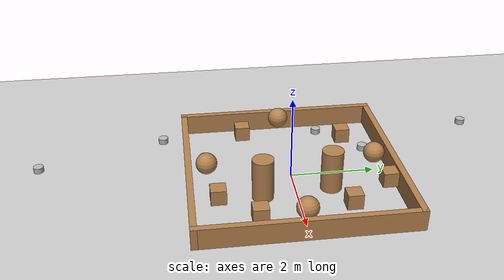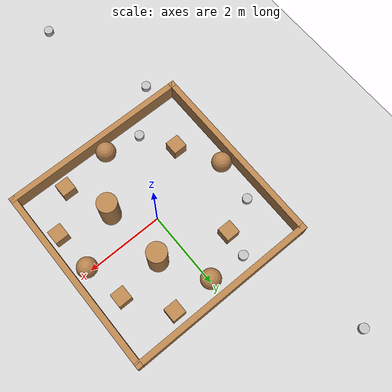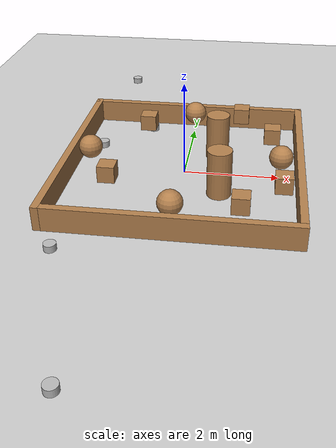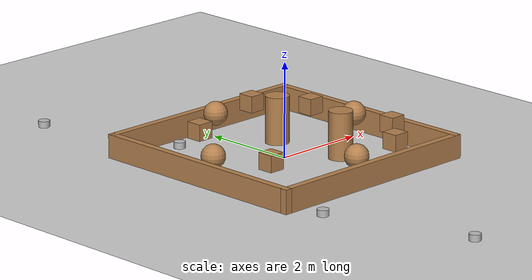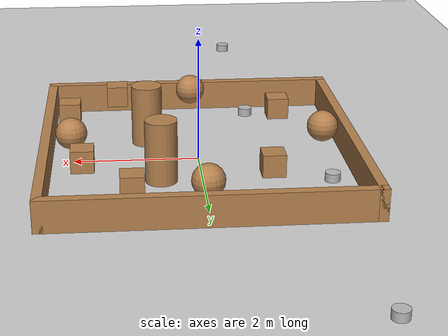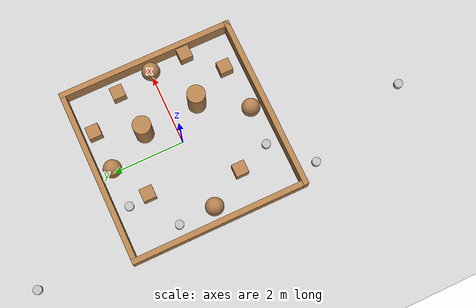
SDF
<sdf version="1.7">
 <world name="default">
  <light name="sun" type="directional">
   <pose>0 0 10 0 -0 0</pose>
   <diffuse>0.8 0.8 0.8 1</diffuse>
   <specular>0.2 0.2 0.2 1</specular>
   <attenuation>
    <range>1000</range>
    <constant>0.9</constant>
    <linear>0.01</linear>
    <quadratic>0.001</quadratic>
   </attenuation>
   <direction>-0.5 0.1 -0.9</direction>
   <spot><inner_angle>0</inner_angle><outer_angle>0</outer_angle><falloff>0</falloff></spot>
  </light>
  <model name="ground_plane">
   <static>1</static>
   <link name="link">
    <collision name="collision">
     <geometry><plane><normal>0 0 1</normal><size>100 100</size></plane></geometry>
     <surface>
      <contact><collide_bitmask>65535</collide_bitmask></contact>
      <friction><ode><mu>100</mu><mu2>50</mu2></ode></friction>
     </surface>
    </collision>
    <visual name="visual">
     <cast_shadows>0</cast_shadows>
     <geometry><plane><normal>0 0 1</normal><size>100 100</size></plane></geometry>
     <material>
      <script><uri>file://media/materials/scripts/gazebo.material</uri><name>Gazebo/Grey</name></script>
     </material>
    </visual>
   </link>
  </model>
  <physics type="ode">
   <real_time_update_rate>1000</real_time_update_rate>
   <max_step_size>0.001</max_step_size>
   <real_time_factor>1</real_time_factor>
   <ode>
    <solver>
     <type>quick</type>
     <iters>150</iters>
     <precon_iters>0</precon_iters>
     <sor>1.4</sor>
     <use_dynamic_moi_rescaling>1</use_dynamic_moi_rescaling>
    </solver>
    <constraints>
     <cfm>1e-05</cfm>
     <erp>0.2</erp>
     <contact_max_correcting_vel>2000</contact_max_correcting_vel>
     <contact_surface_layer>0.01</contact_surface_layer>
    </constraints>
   </ode>
  </physics>
  <model name="obstacle_1">
   <pose>-2 1 0 0 0 0</pose>
   <link name="link">
    <collision name="collision">
     <geometry><cylinder><radius>0.12</radius><length>0.25</length></cylinder></geometry>
    </collision>
    <visual name="visual">
     <geometry><cylinder><radius>0.12</radius><length>0.25</length></cylinder></geometry>
    </visual>
   </link>
  </model>
  <model name="obstacle_2">
   <pose>-1 -2 0 0 0 0</pose>
   <link name="link">
    <collision name="collision">
     <geometry><cylinder><radius>0.12</radius><length>0.25</length></cylinder></geometry>
    </collision>
    <visual name="visual">
     <geometry><cylinder><radius>0.12</radius><length>0.25</length></cylinder></geometry>
    </visual>
   </link>
  </model>
  <model name="obstacle_5">
   <pose>-2 -3 0 0 0 0</pose>
   <link name="link">
    <collision name="collision">
     <geometry><cylinder><radius>0.12</radius><length>0.25</length></cylinder></geometry>
    </collision>
    <visual name="visual">
     <geometry><cylinder><radius>0.12</radius><length>0.25</length></cylinder></geometry>
    </visual>
   </link>
  </model>
  <model name="obstacle_6">
   <pose>-2 5 0 0 0 0</pose>
   <link name="link">
    <collision name="collision">
     <geometry><cylinder><radius>0.12</radius><length>0.25</length></cylinder></geometry>
    </collision>
    <visual name="visual">
     <geometry><cylinder><radius>0.12</radius><length>0.25</length></cylinder></geometry>
    </visual>
   </link>
  </model>
  <model name="obstacle_7">
   <pose>-1 -6 0 0 0 0</pose>
   <link name="link">
    <collision name="collision">
     <geometry><cylinder><radius>0.12</radius><length>0.25</length></cylinder></geometry>
    </collision>
    <visual name="visual">
     <geometry><cylinder><radius>0.12</radius><length>0.25</length></cylinder></geometry>
    </visual>
   </link>
  </model>
  <model name="obstacle_8">
   <pose>-1 2 0 0 0 0</pose>
   <link name="link">
    <collision name="collision">
     <geometry><cylinder><radius>0.12</radius><length>0.25</length></cylinder></geometry>
    </collision>
    <visual name="visual">
     <geometry><cylinder><radius>0.12</radius><length>0.25</length></cylinder></geometry>
    </visual>
   </link>
  </model>
  <model name="turtlebot3_plaza_empty">
   <link name="Wall_1">
    <collision name="Wall_0_Collision">
     <geometry><box><size>5 0.15 0.5</size></box></geometry>
     <pose>0 0 0.25 0 -0 0</pose>
    </collision>
    <visual name="Wall_0_Visual">
     <pose>0 0 0.25 0 -0 0</pose>
     <geometry><box><size>5 0.15 0.5</size></box></geometry>
     <material>
      <script><uri>file://media/materials/scripts/gazebo.material</uri><name>Gazebo/Wood</name></script>
      <ambient>1 1 1 1</ambient>
     </material>
    </visual>
    <pose>-2.425 0 0 0 -0 1.5708</pose>
   </link>
   <link name="Wall_2">
    <collision name="Wall_2_Collision">
     <geometry><box><size>5 0.15 0.5</size></box></geometry>
     <pose>0 0 0.25 0 -0 0</pose>
    </collision>
    <visual name="Wall_2_Visual">
     <pose>0 0 0.25 0 -0 0</pose>
     <geometry><box><size>5 0.15 0.5</size></box></geometry>
     <material>
      <script><uri>file://media/materials/scripts/gazebo.material</uri><name>Gazebo/Wood</name></script>
      <ambient>1 1 1 1</ambient>
     </material>
    </visual>
    <pose>0 2.425 0 0 -0 0</pose>
   </link>
   <link name="Wall_3">
    <collision name="Wall_3_Collision">
     <geometry><box><size>5 0.15 0.5</size></box></geometry>
     <pose>0 0 0.25 0 -0 0</pose>
    </collision>
    <visual name="Wall_3_Visual">
     <pose>0 0 0.25 0 -0 0</pose>
     <geometry><box><size>5 0.15 0.5</size></box></geometry>
     <material>
      <script><uri>file://media/materials/scripts/gazebo.material</uri><name>Gazebo/Wood</name></script>
      <ambient>1 1 1 1</ambient>
     </material>
    </visual>
    <pose>2.425 0 0 0 0 -1.5708</pose>
   </link>
   <link name="Wall_4">
    <collision name="Wall_4_Collision">
     <geometry><box><size>5 0.15 0.5</size></box></geometry>
     <pose>0 0 0.25 0 -0 0</pose>
    </collision>
    <visual name="Wall_4_Visual">
     <pose>0 0 0.25 0 -0 0</pose>
     <geometry><box><size>5 0.15 0.5</size></box></geometry>
     <material>
      <script><uri>file://media/materials/scripts/gazebo.material</uri><name>Gazebo/Wood</name></script>
      <ambient>1 1 1 1</ambient>
     </material>
    </visual>
    <pose>0 -2.425 0 0 -0 3.14159</pose>
   </link>
   <static>1</static>
  </model>
  <scene><ambient>0.4 0.4 0.4 1</ambient><background>0.7 0.7 0.7 1</background><shadows>1</shadows></scene>
  <gravity>0 0 -9.8</gravity>
  <magnetic_field>6e-06 2.3e-05 -4.2e-05</magnetic_field>
  <atmosphere type="adiabatic"/>
  <spherical_coordinates>
   <surface_model>EARTH_WGS84</surface_model>
   <latitude_deg>0</latitude_deg>
   <longitude_deg>0</longitude_deg>
   <elevation>0</elevation>
   <heading_deg>0</heading_deg>
  </spherical_coordinates>
  <model name="stage2_obs">
   <link name="link_0">
    <inertial>
     <mass>1</mass>
     <inertia><ixx>0.145833</ixx><ixy>0</ixy><ixz>0</ixz><iyy>0.145833</iyy><iyz>0</iyz><izz>0.125</izz></inertia>
    </inertial>
    <pose>0.358291 -0.842463 0 0 -0 0</pose>
    <visual name="visual">
     <geometry><cylinder><radius>0.25</radius><length>1</length></cylinder></geometry>
     <material>
      <lighting>1</lighting>
      <script><uri>file://media/materials/scripts/gazebo.material</uri><name>Gazebo/Wood</name></script>
      <shader type="pixel"><normal_map>__default__</normal_map></shader>
      <ambient>0.3 0.3 0.3 1</ambient>
      <diffuse>0.7 0.7 0.7 1</diffuse>
      <specular>0.01 0.01 0.01 1</specular>
      <emissive>0 0 0 1</emissive>
     </material>
    </visual>
    <collision name="collision">
     <geometry><cylinder><radius>0.25</radius><length>1</length></cylinder></geometry>
     <surface>
      <friction>
       <ode><mu>1</mu><mu2>1</mu2><fdir1>0 0 0</fdir1><slip1>0</slip1><slip2>0</slip2></ode>
       <torsional>
        <coefficient>1</coefficient>
        <patch_radius>0</patch_radius>
        <surface_radius>0</surface_radius>
        <use_patch_radius>1</use_patch_radius>
        <ode><slip>0</slip></ode>
       </torsional>
      </friction>
      <bounce><restitution_coefficient>0</restitution_coefficient><threshold>1e+06</threshold></bounce>
      <contact>
       <collide_without_contact>0</collide_without_contact>
       <collide_without_contact_bitmask>1</collide_without_contact_bitmask>
       <collide_bitmask>1</collide_bitmask>
       <ode>
        <soft_cfm>0</soft_cfm>
        <soft_erp>0.2</soft_erp>
        <kp>1e+13</kp>
        <kd>1</kd>
        <max_vel>0.01</max_vel>
        <min_depth>0</min_depth>
       </ode>
       <bullet>
        <split_impulse>1</split_impulse>
        <split_impulse_penetration_threshold>-0.01</split_impulse_penetration_threshold>
        <soft_cfm>0</soft_cfm>
        <soft_erp>0.2</soft_erp>
        <kp>1e+13</kp>
        <kd>1</kd>
       </bullet>
      </contact>
     </surface>
    </collision>
   </link>
   <link name="link_0_clone_0">
    <inertial>
     <mass>1</mass>
     <inertia><ixx>0.145833</ixx><ixy>0</ixy><ixz>0</ixz><iyy>0.145833</iyy><iyz>0</iyz><izz>0.125</izz></inertia>
    </inertial>
    <pose>0.192563 0.776958 0 0 -0 0</pose>
    <visual name="visual">
     <geometry><cylinder><radius>0.25</radius><length>1</length></cylinder></geometry>
     <material>
      <lighting>1</lighting>
      <script><uri>file://media/materials/scripts/gazebo.material</uri><name>Gazebo/Wood</name></script>
      <shader type="pixel"><normal_map>__default__</normal_map></shader>
      <ambient>0.3 0.3 0.3 1</ambient>
      <diffuse>0.7 0.7 0.7 1</diffuse>
      <specular>0.01 0.01 0.01 1</specular>
      <emissive>0 0 0 1</emissive>
     </material>
    </visual>
    <collision name="collision">
     <geometry><cylinder><radius>0.25</radius><length>1</length></cylinder></geometry>
     <surface>
      <friction>
       <ode><mu>1</mu><mu2>1</mu2><fdir1>0 0 0</fdir1><slip1>0</slip1><slip2>0</slip2></ode>
       <torsional>
        <coefficient>1</coefficient>
        <patch_radius>0</patch_radius>
        <surface_radius>0</surface_radius>
        <use_patch_radius>1</use_patch_radius>
        <ode><slip>0</slip></ode>
       </torsional>
      </friction>
      <bounce><restitution_coefficient>0</restitution_coefficient><threshold>1e+06</threshold></bounce>
      <contact>
       <collide_without_contact>0</collide_without_contact>
       <collide_without_contact_bitmask>1</collide_without_contact_bitmask>
       <collide_bitmask>1</collide_bitmask>
       <ode>
        <soft_cfm>0</soft_cfm>
        <soft_erp>0.2</soft_erp>
        <kp>1e+13</kp>
        <kd>1</kd>
        <max_vel>0.01</max_vel>
        <min_depth>0</min_depth>
       </ode>
       <bullet>
        <split_impulse>1</split_impulse>
        <split_impulse_penetration_threshold>-0.01</split_impulse_penetration_threshold>
        <soft_cfm>0</soft_cfm>
        <soft_erp>0.2</soft_erp>
        <kp>1e+13</kp>
        <kd>1</kd>
       </bullet>
      </contact>
     </surface>
    </collision>
   </link>
   <link name="link_1_clone_clone">
    <inertial>
     <mass>1</mass>
     <inertia>
      <ixx>0.166667</ixx>
      <ixy>0</ixy>
      <ixz>0</ixz>
      <iyy>0.166667</iyy>
      <iyz>0</iyz>
      <izz>0.166667</izz>
     </inertia>
    </inertial>
    <pose>0.841279 -1.88419 0 0 -0 0</pose>
    <visual name="visual">
     <geometry><box><size>0.35 0.35 0.35</size></box></geometry>
     <material>
      <lighting>1</lighting>
      <script><uri>file://media/materials/scripts/gazebo.material</uri><name>Gazebo/Wood</name></script>
      <shader type="pixel"><normal_map>__default__</normal_map></shader>
      <ambient>0.3 0.3 0.3 1</ambient>
      <diffuse>0.7 0.7 0.7 1</diffuse>
      <specular>0.01 0.01 0.01 1</specular>
      <emissive>0 0 0 1</emissive>
     </material>
    </visual>
    <collision name="collision">
     <geometry><box><size>0.35 0.35 0.35</size></box></geometry>
     <surface>
      <friction>
       <ode><mu>1</mu><mu2>1</mu2><fdir1>0 0 0</fdir1><slip1>0</slip1><slip2>0</slip2></ode>
       <torsional>
        <coefficient>1</coefficient>
        <patch_radius>0</patch_radius>
        <surface_radius>0</surface_radius>
        <use_patch_radius>1</use_patch_radius>
        <ode><slip>0</slip></ode>
       </torsional>
      </friction>
      <bounce><restitution_coefficient>0</restitution_coefficient><threshold>1e+06</threshold></bounce>
      <contact>
       <collide_without_contact>0</collide_without_contact>
       <collide_without_contact_bitmask>1</collide_without_contact_bitmask>
       <collide_bitmask>1</collide_bitmask>
       <ode>
        <soft_cfm>0</soft_cfm>
        <soft_erp>0.2</soft_erp>
        <kp>1e+13</kp>
        <kd>1</kd>
        <max_vel>0.01</max_vel>
        <min_depth>0</min_depth>
       </ode>
       <bullet>
        <split_impulse>1</split_impulse>
        <split_impulse_penetration_threshold>-0.01</split_impulse_penetration_threshold>
        <soft_cfm>0</soft_cfm>
        <soft_erp>0.2</soft_erp>
        <kp>1e+13</kp>
        <kd>1</kd>
       </bullet>
      </contact>
     </surface>
    </collision>
   </link>
   <link name="link_1_clone_clone_clone">
    <inertial>
     <mass>1</mass>
     <inertia>
      <ixx>0.166667</ixx>
      <ixy>0</ixy>
      <ixz>0</ixz>
      <iyy>0.166667</iyy>
      <iyz>0</iyz>
      <izz>0.166667</izz>
     </inertia>
    </inertial>
    <pose>1.38108 0.990034 0 0 -0 0</pose>
    <visual name="visual">
     <geometry><box><size>0.35 0.35 0.35</size></box></geometry>
     <material>
      <lighting>1</lighting>
      <script><uri>file://media/materials/scripts/gazebo.material</uri><name>Gazebo/Wood</name></script>
      <shader type="pixel"><normal_map>__default__</normal_map></shader>
      <ambient>0.3 0.3 0.3 1</ambient>
      <diffuse>0.7 0.7 0.7 1</diffuse>
      <specular>0.01 0.01 0.01 1</specular>
      <emissive>0 0 0 1</emissive>
     </material>
    </visual>
    <collision name="collision">
     <geometry><box><size>0.35 0.35 0.35</size></box></geometry>
     <surface>
      <friction>
       <ode><mu>1</mu><mu2>1</mu2><fdir1>0 0 0</fdir1><slip1>0</slip1><slip2>0</slip2></ode>
       <torsional>
        <coefficient>1</coefficient>
        <patch_radius>0</patch_radius>
        <surface_radius>0</surface_radius>
        <use_patch_radius>1</use_patch_radius>
        <ode><slip>0</slip></ode>
       </torsional>
      </friction>
      <bounce><restitution_coefficient>0</restitution_coefficient><threshold>1e+06</threshold></bounce>
      <contact>
       <collide_without_contact>0</collide_without_contact>
       <collide_without_contact_bitmask>1</collide_without_contact_bitmask>
       <collide_bitmask>1</collide_bitmask>
       <ode>
        <soft_cfm>0</soft_cfm>
        <soft_erp>0.2</soft_erp>
        <kp>1e+13</kp>
        <kd>1</kd>
        <max_vel>0.01</max_vel>
        <min_depth>0</min_depth>
       </ode>
       <bullet>
        <split_impulse>1</split_impulse>
        <split_impulse_penetration_threshold>-0.01</split_impulse_penetration_threshold>
        <soft_cfm>0</soft_cfm>
        <soft_erp>0.2</soft_erp>
        <kp>1e+13</kp>
        <kd>1</kd>
       </bullet>
      </contact>
     </surface>
    </collision>
   </link>
   <link name="link_1_clone_clone_clone_0">
    <inertial>
     <mass>1</mass>
     <inertia>
      <ixx>0.166667</ixx>
      <ixy>0</ixy>
      <ixz>0</ixz>
      <iyy>0.166667</iyy>
      <iyz>0</iyz>
      <izz>0.166667</izz>
     </inertia>
    </inertial>
    <pose>1.63204 -1.06501 0 0 -0 0</pose>
    <visual name="visual">
     <geometry><box><size>0.35 0.35 0.35</size></box></geometry>
     <material>
      <lighting>1</lighting>
      <script><uri>file://media/materials/scripts/gazebo.material</uri><name>Gazebo/Wood</name></script>
      <shader type="pixel"><normal_map>__default__</normal_map></shader>
      <ambient>0.3 0.3 0.3 1</ambient>
      <diffuse>0.7 0.7 0.7 1</diffuse>
      <specular>0.01 0.01 0.01 1</specular>
      <emissive>0 0 0 1</emissive>
     </material>
    </visual>
    <collision name="collision">
     <geometry><box><size>0.35 0.35 0.35</size></box></geometry>
     <surface>
      <friction>
       <ode><mu>1</mu><mu2>1</mu2><fdir1>0 0 0</fdir1><slip1>0</slip1><slip2>0</slip2></ode>
       <torsional>
        <coefficient>1</coefficient>
        <patch_radius>0</patch_radius>
        <surface_radius>0</surface_radius>
        <use_patch_radius>1</use_patch_radius>
        <ode><slip>0</slip></ode>
       </torsional>
      </friction>
      <bounce><restitution_coefficient>0</restitution_coefficient><threshold>1e+06</threshold></bounce>
      <contact>
       <collide_without_contact>0</collide_without_contact>
       <collide_without_contact_bitmask>1</collide_without_contact_bitmask>
       <collide_bitmask>1</collide_bitmask>
       <ode>
        <soft_cfm>0</soft_cfm>
        <soft_erp>0.2</soft_erp>
        <kp>1e+13</kp>
        <kd>1</kd>
        <max_vel>0.01</max_vel>
        <min_depth>0</min_depth>
       </ode>
       <bullet>
        <split_impulse>1</split_impulse>
        <split_impulse_penetration_threshold>-0.01</split_impulse_penetration_threshold>
        <soft_cfm>0</soft_cfm>
        <soft_erp>0.2</soft_erp>
        <kp>1e+13</kp>
        <kd>1</kd>
       </bullet>
      </contact>
     </surface>
    </collision>
   </link>
   <link name="link_1_clone_clone_clone_1">
    <inertial>
     <mass>1</mass>
     <inertia>
      <ixx>0.166667</ixx>
      <ixy>0</ixy>
      <ixz>0</ixz>
      <iyy>0.166667</iyy>
      <iyz>0</iyz>
      <izz>0.166667</izz>
     </inertia>
    </inertial>
    <pose>0.656609 1.98442 0 0 -0 0</pose>
    <visual name="visual">
     <geometry><box><size>0.35 0.35 0.35</size></box></geometry>
     <material>
      <lighting>1</lighting>
      <script><uri>file://media/materials/scripts/gazebo.material</uri><name>Gazebo/Wood</name></script>
      <shader type="pixel"><normal_map>__default__</normal_map></shader>
      <ambient>0.3 0.3 0.3 1</ambient>
      <diffuse>0.7 0.7 0.7 1</diffuse>
      <specular>0.01 0.01 0.01 1</specular>
      <emissive>0 0 0 1</emissive>
     </material>
    </visual>
    <collision name="collision">
     <geometry><box><size>0.35 0.35 0.35</size></box></geometry>
     <surface>
      <friction>
       <ode><mu>1</mu><mu2>1</mu2><fdir1>0 0 0</fdir1><slip1>0</slip1><slip2>0</slip2></ode>
       <torsional>
        <coefficient>1</coefficient>
        <patch_radius>0</patch_radius>
        <surface_radius>0</surface_radius>
        <use_patch_radius>1</use_patch_radius>
        <ode><slip>0</slip></ode>
       </torsional>
      </friction>
      <bounce><restitution_coefficient>0</restitution_coefficient><threshold>1e+06</threshold></bounce>
      <contact>
       <collide_without_contact>0</collide_without_contact>
       <collide_without_contact_bitmask>1</collide_without_contact_bitmask>
       <collide_bitmask>1</collide_bitmask>
       <ode>
        <soft_cfm>0</soft_cfm>
        <soft_erp>0.2</soft_erp>
        <kp>1e+13</kp>
        <kd>1</kd>
        <max_vel>0.01</max_vel>
        <min_depth>0</min_depth>
       </ode>
       <bullet>
        <split_impulse>1</split_impulse>
        <split_impulse_penetration_threshold>-0.01</split_impulse_penetration_threshold>
        <soft_cfm>0</soft_cfm>
        <soft_erp>0.2</soft_erp>
        <kp>1e+13</kp>
        <kd>1</kd>
       </bullet>
      </contact>
     </surface>
    </collision>
   </link>
   <link name="link_1_clone_clone_clone_2">
    <inertial>
     <mass>1</mass>
     <inertia>
      <ixx>0.166667</ixx>
      <ixy>0</ixy>
      <ixz>0</ixz>
      <iyy>0.166667</iyy>
      <iyz>0</iyz>
      <izz>0.166667</izz>
     </inertia>
    </inertial>
    <pose>-1.85776 -1.07448 0 0 -0 0</pose>
    <visual name="visual">
     <geometry><box><size>0.35 0.35 0.35</size></box></geometry>
     <material>
      <lighting>1</lighting>
      <script><uri>file://media/materials/scripts/gazebo.material</uri><name>Gazebo/Wood</name></script>
      <shader type="pixel"><normal_map>__default__</normal_map></shader>
      <ambient>0.3 0.3 0.3 1</ambient>
      <diffuse>0.7 0.7 0.7 1</diffuse>
      <specular>0.01 0.01 0.01 1</specular>
      <emissive>0 0 0 1</emissive>
     </material>
    </visual>
    <collision name="collision">
     <geometry><box><size>0.35 0.35 0.35</size></box></geometry>
     <surface>
      <friction>
       <ode><mu>1</mu><mu2>1</mu2><fdir1>0 0 0</fdir1><slip1>0</slip1><slip2>0</slip2></ode>
       <torsional>
        <coefficient>1</coefficient>
        <patch_radius>0</patch_radius>
        <surface_radius>0</surface_radius>
        <use_patch_radius>1</use_patch_radius>
        <ode><slip>0</slip></ode>
       </torsional>
      </friction>
      <bounce><restitution_coefficient>0</restitution_coefficient><threshold>1e+06</threshold></bounce>
      <contact>
       <collide_without_contact>0</collide_without_contact>
       <collide_without_contact_bitmask>1</collide_without_contact_bitmask>
       <collide_bitmask>1</collide_bitmask>
       <ode>
        <soft_cfm>0</soft_cfm>
        <soft_erp>0.2</soft_erp>
        <kp>1e+13</kp>
        <kd>1</kd>
        <max_vel>0.01</max_vel>
        <min_depth>0</min_depth>
       </ode>
       <bullet>
        <split_impulse>1</split_impulse>
        <split_impulse_penetration_threshold>-0.01</split_impulse_penetration_threshold>
        <soft_cfm>0</soft_cfm>
        <soft_erp>0.2</soft_erp>
        <kp>1e+13</kp>
        <kd>1</kd>
       </bullet>
      </contact>
     </surface>
    </collision>
   </link>
   <link name="link_1_clone_clone_clone_3">
    <inertial>
     <mass>1</mass>
     <inertia>
      <ixx>0.166667</ixx>
      <ixy>0</ixy>
      <ixz>0</ixz>
      <iyy>0.166667</iyy>
      <iyz>0</iyz>
      <izz>0.166667</izz>
     </inertia>
    </inertial>
    <pose>-1.44106 1.35938 0 0 -0 0</pose>
    <visual name="visual">
     <geometry><box><size>0.35 0.35 0.35</size></box></geometry>
     <material>
      <lighting>1</lighting>
      <script><uri>file://media/materials/scripts/gazebo.material</uri><name>Gazebo/Wood</name></script>
      <shader type="pixel"><normal_map>__default__</normal_map></shader>
      <ambient>0.3 0.3 0.3 1</ambient>
      <diffuse>0.7 0.7 0.7 1</diffuse>
      <specular>0.01 0.01 0.01 1</specular>
      <emissive>0 0 0 1</emissive>
     </material>
    </visual>
    <collision name="collision">
     <geometry><box><size>0.35 0.35 0.35</size></box></geometry>
     <surface>
      <friction>
       <ode><mu>1</mu><mu2>1</mu2><fdir1>0 0 0</fdir1><slip1>0</slip1><slip2>0</slip2></ode>
       <torsional>
        <coefficient>1</coefficient>
        <patch_radius>0</patch_radius>
        <surface_radius>0</surface_radius>
        <use_patch_radius>1</use_patch_radius>
        <ode><slip>0</slip></ode>
       </torsional>
      </friction>
      <bounce><restitution_coefficient>0</restitution_coefficient><threshold>1e+06</threshold></bounce>
      <contact>
       <collide_without_contact>0</collide_without_contact>
       <collide_without_contact_bitmask>1</collide_without_contact_bitmask>
       <collide_bitmask>1</collide_bitmask>
       <ode>
        <soft_cfm>0</soft_cfm>
        <soft_erp>0.2</soft_erp>
        <kp>1e+13</kp>
        <kd>1</kd>
        <max_vel>0.01</max_vel>
        <min_depth>0</min_depth>
       </ode>
       <bullet>
        <split_impulse>1</split_impulse>
        <split_impulse_penetration_threshold>-0.01</split_impulse_penetration_threshold>
        <soft_cfm>0</soft_cfm>
        <soft_erp>0.2</soft_erp>
        <kp>1e+13</kp>
        <kd>1</kd>
       </bullet>
      </contact>
     </surface>
    </collision>
   </link>
   <link name="link_2">
    <inertial>
     <mass>1</mass>
     <inertia><ixx>0.1</ixx><ixy>0</ixy><ixz>0</ixz><iyy>0.1</iyy><iyz>0</iyz><izz>0.1</izz></inertia>
    </inertial>
    <pose>-2.45911 -0.070631 0 0 -0 0</pose>
    <visual name="visual">
     <geometry><sphere><radius>0.25</radius></sphere></geometry>
     <material>
      <lighting>1</lighting>
      <script><uri>file://media/materials/scripts/gazebo.material</uri><name>Gazebo/Wood</name></script>
      <shader type="pixel"><normal_map>__default__</normal_map></shader>
      <ambient>0.3 0.3 0.3 1</ambient>
      <diffuse>0.7 0.7 0.7 1</diffuse>
      <specular>0.01 0.01 0.01 1</specular>
      <emissive>0 0 0 1</emissive>
     </material>
    </visual>
    <collision name="collision">
     <geometry><sphere><radius>0.25</radius></sphere></geometry>
     <surface>
      <friction>
       <ode><mu>1</mu><mu2>1</mu2><fdir1>0 0 0</fdir1><slip1>0</slip1><slip2>0</slip2></ode>
       <torsional>
        <coefficient>1</coefficient>
        <patch_radius>0</patch_radius>
        <surface_radius>0</surface_radius>
        <use_patch_radius>1</use_patch_radius>
        <ode><slip>0</slip></ode>
       </torsional>
      </friction>
      <bounce><restitution_coefficient>0</restitution_coefficient><threshold>1e+06</threshold></bounce>
      <contact>
       <collide_without_contact>0</collide_without_contact>
       <collide_without_contact_bitmask>1</collide_without_contact_bitmask>
       <collide_bitmask>1</collide_bitmask>
       <ode>
        <soft_cfm>0</soft_cfm>
        <soft_erp>0.2</soft_erp>
        <kp>1e+13</kp>
        <kd>1</kd>
        <max_vel>0.01</max_vel>
        <min_depth>0</min_depth>
       </ode>
       <bullet>
        <split_impulse>1</split_impulse>
        <split_impulse_penetration_threshold>-0.01</split_impulse_penetration_threshold>
        <soft_cfm>0</soft_cfm>
        <soft_erp>0.2</soft_erp>
        <kp>1e+13</kp>
        <kd>1</kd>
       </bullet>
      </contact>
     </surface>
    </collision>
   </link>
   <link name="link_2_clone">
    <inertial>
     <mass>1</mass>
     <inertia><ixx>0.1</ixx><ixy>0</ixy><ixz>0</ixz><iyy>0.1</iyy><iyz>0</iyz><izz>0.1</izz></inertia>
    </inertial>
    <pose>-0.451416 -2.05466 0 0 -0 0</pose>
    <visual name="visual">
     <geometry><sphere><radius>0.25</radius></sphere></geometry>
     <material>
      <lighting>1</lighting>
      <script><uri>file://media/materials/scripts/gazebo.material</uri><name>Gazebo/Wood</name></script>
      <shader type="pixel"><normal_map>__default__</normal_map></shader>
      <ambient>0.3 0.3 0.3 1</ambient>
      <diffuse>0.7 0.7 0.7 1</diffuse>
      <specular>0.01 0.01 0.01 1</specular>
      <emissive>0 0 0 1</emissive>
     </material>
    </visual>
    <collision name="collision">
     <geometry><sphere><radius>0.25</radius></sphere></geometry>
     <surface>
      <friction>
       <ode><mu>1</mu><mu2>1</mu2><fdir1>0 0 0</fdir1><slip1>0</slip1><slip2>0</slip2></ode>
       <torsional>
        <coefficient>1</coefficient>
        <patch_radius>0</patch_radius>
        <surface_radius>0</surface_radius>
        <use_patch_radius>1</use_patch_radius>
        <ode><slip>0</slip></ode>
       </torsional>
      </friction>
      <bounce><restitution_coefficient>0</restitution_coefficient><threshold>1e+06</threshold></bounce>
      <contact>
       <collide_without_contact>0</collide_without_contact>
       <collide_without_contact_bitmask>1</collide_without_contact_bitmask>
       <collide_bitmask>1</collide_bitmask>
       <ode>
        <soft_cfm>0</soft_cfm>
        <soft_erp>0.2</soft_erp>
        <kp>1e+13</kp>
        <kd>1</kd>
        <max_vel>0.01</max_vel>
        <min_depth>0</min_depth>
       </ode>
       <bullet>
        <split_impulse>1</split_impulse>
        <split_impulse_penetration_threshold>-0.01</split_impulse_penetration_threshold>
        <soft_cfm>0</soft_cfm>
        <soft_erp>0.2</soft_erp>
        <kp>1e+13</kp>
        <kd>1</kd>
       </bullet>
      </contact>
     </surface>
    </collision>
   </link>
   <link name="link_2_clone_0">
    <inertial>
     <mass>1</mass>
     <inertia><ixx>0.1</ixx><ixy>0</ixy><ixz>0</ixz><iyy>0.1</iyy><iyz>0</iyz><izz>0.1</izz></inertia>
    </inertial>
    <pose>1.57996 -0.051691 0 0 -0 0</pose>
    <visual name="visual">
     <geometry><sphere><radius>0.25</radius></sphere></geometry>
     <material>
      <lighting>1</lighting>
      <script><uri>file://media/materials/scripts/gazebo.material</uri><name>Gazebo/Wood</name></script>
      <shader type="pixel"><normal_map>__default__</normal_map></shader>
      <ambient>0.3 0.3 0.3 1</ambient>
      <diffuse>0.7 0.7 0.7 1</diffuse>
      <specular>0.01 0.01 0.01 1</specular>
      <emissive>0 0 0 1</emissive>
     </material>
    </visual>
    <collision name="collision">
     <geometry><sphere><radius>0.25</radius></sphere></geometry>
     <surface>
      <friction>
       <ode><mu>1</mu><mu2>1</mu2><fdir1>0 0 0</fdir1><slip1>0</slip1><slip2>0</slip2></ode>
       <torsional>
        <coefficient>1</coefficient>
        <patch_radius>0</patch_radius>
        <surface_radius>0</surface_radius>
        <use_patch_radius>1</use_patch_radius>
        <ode><slip>0</slip></ode>
       </torsional>
      </friction>
      <bounce><restitution_coefficient>0</restitution_coefficient><threshold>1e+06</threshold></bounce>
      <contact>
       <collide_without_contact>0</collide_without_contact>
       <collide_without_contact_bitmask>1</collide_without_contact_bitmask>
       <collide_bitmask>1</collide_bitmask>
       <ode>
        <soft_cfm>0</soft_cfm>
        <soft_erp>0.2</soft_erp>
        <kp>1e+13</kp>
        <kd>1</kd>
        <max_vel>0.01</max_vel>
        <min_depth>0</min_depth>
       </ode>
       <bullet>
        <split_impulse>1</split_impulse>
        <split_impulse_penetration_threshold>-0.01</split_impulse_penetration_threshold>
        <soft_cfm>0</soft_cfm>
        <soft_erp>0.2</soft_erp>
        <kp>1e+13</kp>
        <kd>1</kd>
       </bullet>
      </contact>
     </surface>
    </collision>
   </link>
   <link name="link_2_clone_1">
    <inertial>
     <mass>1</mass>
     <inertia><ixx>0.1</ixx><ixy>0</ixy><ixz>0</ixz><iyy>0.1</iyy><iyz>0</iyz><izz>0.1</izz></inertia>
    </inertial>
    <pose>-0.432475 1.93233 0 0 -0 0</pose>
    <visual name="visual">
     <geometry><sphere><radius>0.25</radius></sphere></geometry>
     <material>
      <lighting>1</lighting>
      <script><uri>file://media/materials/scripts/gazebo.material</uri><name>Gazebo/Wood</name></script>
      <shader type="pixel"><normal_map>__default__</normal_map></shader>
      <ambient>0.3 0.3 0.3 1</ambient>
      <diffuse>0.7 0.7 0.7 1</diffuse>
      <specular>0.01 0.01 0.01 1</specular>
      <emissive>0 0 0 1</emissive>
     </material>
    </visual>
    <collision name="collision">
     <geometry><sphere><radius>0.25</radius></sphere></geometry>
     <surface>
      <friction>
       <ode><mu>1</mu><mu2>1</mu2><fdir1>0 0 0</fdir1><slip1>0</slip1><slip2>0</slip2></ode>
       <torsional>
        <coefficient>1</coefficient>
        <patch_radius>0</patch_radius>
        <surface_radius>0</surface_radius>
        <use_patch_radius>1</use_patch_radius>
        <ode><slip>0</slip></ode>
       </torsional>
      </friction>
      <bounce><restitution_coefficient>0</restitution_coefficient><threshold>1e+06</threshold></bounce>
      <contact>
       <collide_without_contact>0</collide_without_contact>
       <collide_without_contact_bitmask>1</collide_without_contact_bitmask>
       <collide_bitmask>1</collide_bitmask>
       <ode>
        <soft_cfm>0</soft_cfm>
        <soft_erp>0.2</soft_erp>
        <kp>1e+13</kp>
        <kd>1</kd>
        <max_vel>0.01</max_vel>
        <min_depth>0</min_depth>
       </ode>
       <bullet>
        <split_impulse>1</split_impulse>
        <split_impulse_penetration_threshold>-0.01</split_impulse_penetration_threshold>
        <soft_cfm>0</soft_cfm>
        <soft_erp>0.2</soft_erp>
        <kp>1e+13</kp>
        <kd>1</kd>
       </bullet>
      </contact>
     </surface>
    </collision>
   </link>
   <static>0</static>
   <pose>0.444241 0.056526 0.5 0 -0 0</pose>
  </model>
 </world>
</sdf>
